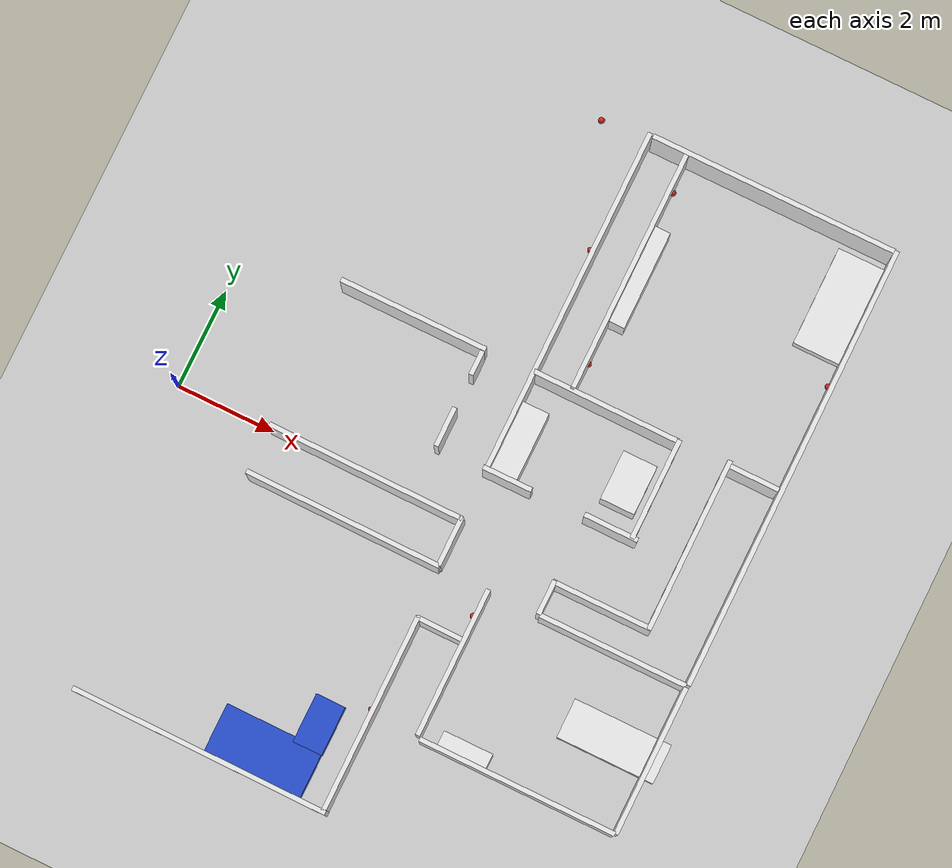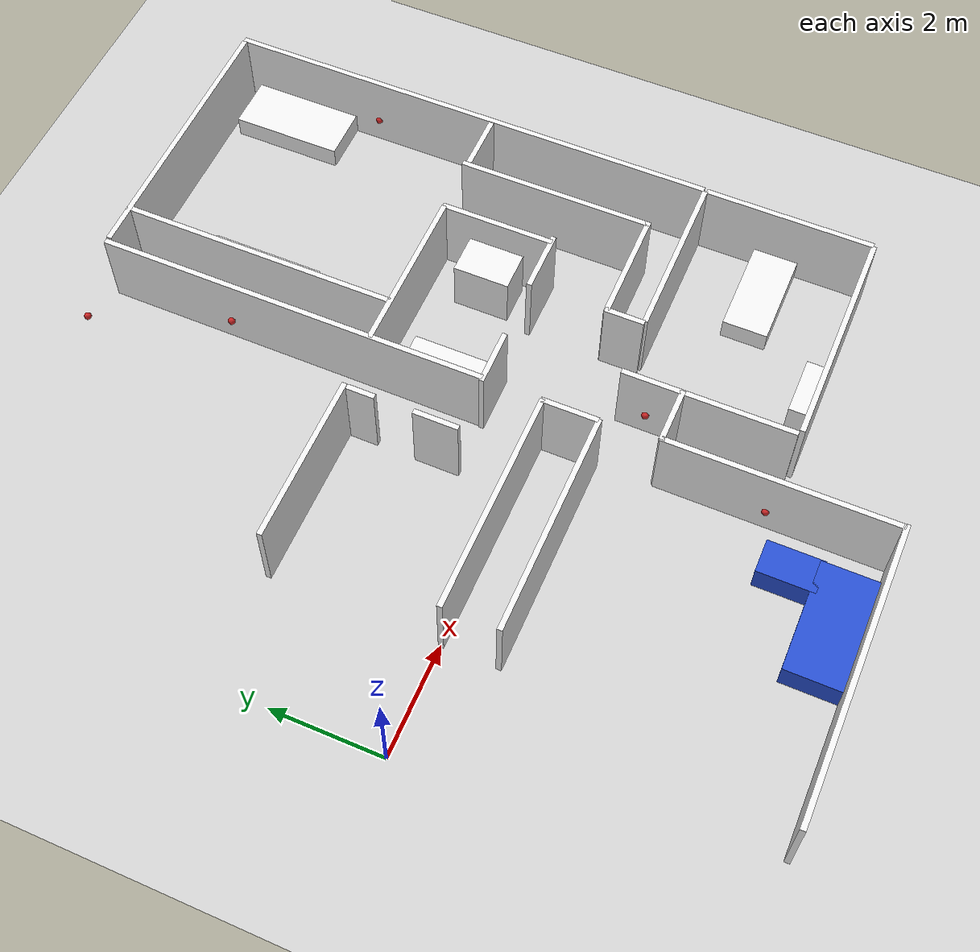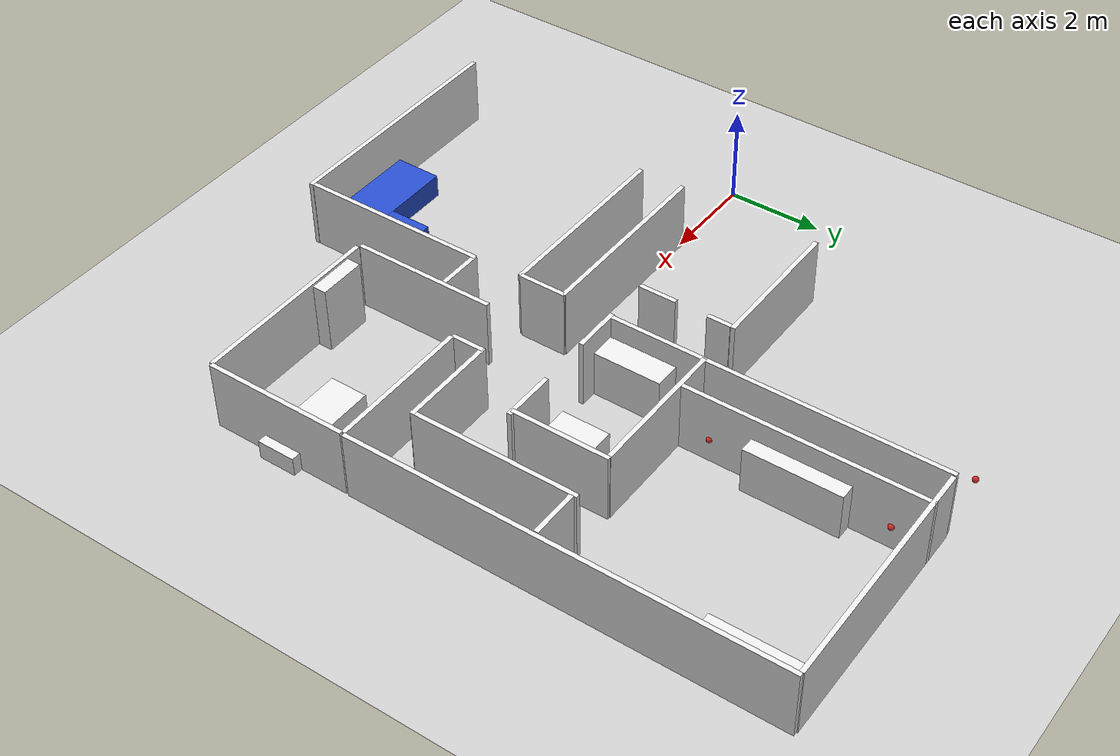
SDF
<sdf version="1.6">
 <world name="default">
  <model name="ground_plane">
   <static>1</static>
   <link name="link">
    <collision name="collision">
     <geometry><plane><normal>0 0 1</normal><size>100 100</size></plane></geometry>
     <surface>
      <contact><collide_bitmask>65535</collide_bitmask></contact>
      <friction><ode><mu>100</mu><mu2>50</mu2></ode></friction>
     </surface>
    </collision>
    <visual name="visual">
     <cast_shadows>0</cast_shadows>
     <geometry><plane><normal>0 0 1</normal><size>100 100</size></plane></geometry>
     <material>
      <script><uri>file://media/materials/scripts/gazebo.material</uri><name>Gazebo/Grey</name></script>
     </material>
    </visual>
   </link>
  </model>
  <model name="unit_box_clone_6">
   <static>1</static>
   <pose>4.95108 2.70454 0.725943 0 -0 0</pose>
   <link name="link">
    <inertial>
     <mass>1</mass>
     <inertia>
      <ixx>0.166667</ixx>
      <ixy>0</ixy>
      <ixz>0</ixz>
      <iyy>0.166667</iyy>
      <iyz>0</iyz>
      <izz>0.166667</izz>
     </inertia>
    </inertial>
    <collision name="collision"><geometry><box><size>0.094944 0.5 1.45871</size></box></geometry></collision>
    <visual name="visual">
     <geometry><box><size>0.094944 0.5 1.45871</size></box></geometry>
     <material>
      <script><name>Gazebo/White</name><uri>file://media/materials/scripts/gazebo.material</uri></script>
     </material>
    </visual>
   </link>
  </model>
  <model name="unit_box_clone_8">
   <static>1</static>
   <pose>6.99481 -2.49921 0.725943 0 -0 0</pose>
   <link name="link">
    <inertial>
     <mass>1</mass>
     <inertia>
      <ixx>0.166667</ixx>
      <ixy>0</ixy>
      <ixz>0</ixz>
      <iyy>0.166667</iyy>
      <iyz>0</iyz>
      <izz>0.166667</izz>
     </inertia>
    </inertial>
    <collision name="collision"><geometry><box><size>0.094944 3 1.45871</size></box></geometry></collision>
    <visual name="visual">
     <geometry><box><size>0.094944 3 1.45871</size></box></geometry>
     <material>
      <script><name>Gazebo/White</name><uri>file://media/materials/scripts/gazebo.material</uri></script>
     </material>
    </visual>
   </link>
  </model>
  <model name="unit_box_clone_11">
   <static>1</static>
   <pose>3.98909 -0.99365 0.725943 0 0 -1.57768</pose>
   <link name="link">
    <inertial>
     <mass>1</mass>
     <inertia>
      <ixx>0.166667</ixx>
      <ixy>0</ixy>
      <ixz>0</ixz>
      <iyy>0.166667</iyy>
      <iyz>0</iyz>
      <izz>0.166667</izz>
     </inertia>
    </inertial>
    <collision name="collision"><geometry><box><size>0.094944 4 1.45871</size></box></geometry></collision>
    <visual name="visual">
     <geometry><box><size>0.094944 4 1.45871</size></box></geometry>
     <material>
      <script><name>Gazebo/White</name><uri>file://media/materials/scripts/gazebo.material</uri></script>
     </material>
    </visual>
   </link>
  </model>
  <model name="unit_box_clone_13">
   <static>1</static>
   <pose>3.98138 -0.020731 0.725943 0 0 -1.577</pose>
   <link name="link">
    <inertial>
     <mass>1</mass>
     <inertia>
      <ixx>0.166667</ixx>
      <ixy>0</ixy>
      <ixz>0</ixz>
      <iyy>0.166667</iyy>
      <iyz>0</iyz>
      <izz>0.166667</izz>
     </inertia>
    </inertial>
    <collision name="collision"><geometry><box><size>0.094944 4 1.45871</size></box></geometry></collision>
    <visual name="visual">
     <geometry><box><size>0.094944 4 1.45871</size></box></geometry>
     <material>
      <script><name>Gazebo/White</name><uri>file://media/materials/scripts/gazebo.material</uri></script>
     </material>
    </visual>
   </link>
  </model>
  <model name="unit_box_clone_14">
   <static>1</static>
   <pose>5.96632 -0.501926 0.725943 0 -0 0</pose>
   <link name="link">
    <inertial>
     <mass>1</mass>
     <inertia>
      <ixx>0.166667</ixx>
      <ixy>0</ixy>
      <ixz>0</ixz>
      <iyy>0.166667</iyy>
      <iyz>0</iyz>
      <izz>0.166667</izz>
     </inertia>
    </inertial>
    <collision name="collision"><geometry><box><size>0.094944 1 1.45871</size></box></geometry></collision>
    <visual name="visual">
     <geometry><box><size>0.094944 1 1.45871</size></box></geometry>
     <material>
      <script><name>Gazebo/White</name><uri>file://media/materials/scripts/gazebo.material</uri></script>
     </material>
    </visual>
   </link>
  </model>
  <model name="unit_box_clone_15">
   <static>1</static>
   <pose>6.0441 -4.01745 0.725943 0 -0 0</pose>
   <link name="link">
    <inertial>
     <mass>1</mass>
     <inertia>
      <ixx>0.166667</ixx>
      <ixy>0</ixy>
      <ixz>0</ixz>
      <iyy>0.166667</iyy>
      <iyz>0</iyz>
      <izz>0.166667</izz>
     </inertia>
    </inertial>
    <collision name="collision"><geometry><box><size>0.094944 4 1.45871</size></box></geometry></collision>
    <visual name="visual">
     <geometry><box><size>0.094944 4 1.45871</size></box></geometry>
     <material>
      <script><name>Gazebo/White</name><uri>file://media/materials/scripts/gazebo.material</uri></script>
     </material>
    </visual>
   </link>
  </model>
  <model name="unit_box_clone_18">
   <static>1</static>
   <pose>6.52354 -2.04368 0.725943 0 0 -1.57949</pose>
   <link name="link">
    <inertial>
     <mass>1</mass>
     <inertia>
      <ixx>0.166667</ixx>
      <ixy>0</ixy>
      <ixz>0</ixz>
      <iyy>0.166667</iyy>
      <iyz>0</iyz>
      <izz>0.166667</izz>
     </inertia>
    </inertial>
    <collision name="collision"><geometry><box><size>0.094944 1 1.45871</size></box></geometry></collision>
    <visual name="visual">
     <geometry><box><size>0.094944 1 1.45871</size></box></geometry>
     <material>
      <script><name>Gazebo/White</name><uri>file://media/materials/scripts/gazebo.material</uri></script>
     </material>
    </visual>
   </link>
  </model>
  <model name="unit_box_clone_19">
   <static>1</static>
   <pose>3.48899 -6.0094 0.725943 0 -0 1.56515</pose>
   <link name="link">
    <inertial>
     <mass>1</mass>
     <inertia>
      <ixx>0.166667</ixx>
      <ixy>0</ixy>
      <ixz>0</ixz>
      <iyy>0.166667</iyy>
      <iyz>0</iyz>
      <izz>0.166667</izz>
     </inertia>
    </inertial>
    <collision name="collision"><geometry><box><size>0.094944 5.21981 1.45871</size></box></geometry></collision>
    <visual name="visual">
     <geometry><box><size>0.094944 5.21981 1.45871</size></box></geometry>
     <material>
      <script><name>Gazebo/White</name><uri>file://media/materials/scripts/gazebo.material</uri></script>
     </material>
    </visual>
   </link>
  </model>
  <model name="unit_box_clone_22">
   <static>1</static>
   <pose>9.55545 -1.00798 0.725943 0 0 -1.57075</pose>
   <link name="link">
    <inertial>
     <mass>1</mass>
     <inertia>
      <ixx>0.166667</ixx>
      <ixy>0</ixy>
      <ixz>0</ixz>
      <iyy>0.166667</iyy>
      <iyz>0</iyz>
      <izz>0.166667</izz>
     </inertia>
    </inertial>
    <collision name="collision"><geometry><box><size>0.094944 3 1.45871</size></box></geometry></collision>
    <visual name="visual">
     <geometry><box><size>0.094944 3 1.45871</size></box></geometry>
     <material>
      <script><name>Gazebo/White</name><uri>file://media/materials/scripts/gazebo.material</uri></script>
     </material>
    </visual>
   </link>
  </model>
  <model name="unit_box_clone_23">
   <static>1</static>
   <pose>9.05828 -4.04024 0.725943 0 0 -1.5714</pose>
   <link name="link">
    <inertial>
     <mass>1</mass>
     <inertia>
      <ixx>0.166667</ixx>
      <ixy>0</ixy>
      <ixz>0</ixz>
      <iyy>0.166667</iyy>
      <iyz>0</iyz>
      <izz>0.166667</izz>
     </inertia>
    </inertial>
    <collision name="collision"><geometry><box><size>0.094944 4 1.45871</size></box></geometry></collision>
    <visual name="visual">
     <geometry><box><size>0.094944 4 1.45871</size></box></geometry>
     <material>
      <script><name>Gazebo/White</name><uri>file://media/materials/scripts/gazebo.material</uri></script>
     </material>
    </visual>
   </link>
  </model>
  <model name="unit_box_clone_24">
   <static>1</static>
   <pose>11.076 -2.5322 0.725943 0 -0 0</pose>
   <link name="link">
    <inertial>
     <mass>1</mass>
     <inertia>
      <ixx>0.166667</ixx>
      <ixy>0</ixy>
      <ixz>0</ixz>
      <iyy>0.166667</iyy>
      <iyz>0</iyz>
      <izz>0.166667</izz>
     </inertia>
    </inertial>
    <collision name="collision"><geometry><box><size>0.094944 3 1.45871</size></box></geometry></collision>
    <visual name="visual">
     <geometry><box><size>0.094944 3 1.45871</size></box></geometry>
     <material>
      <script><name>Gazebo/White</name><uri>file://media/materials/scripts/gazebo.material</uri></script>
     </material>
    </visual>
   </link>
  </model>
  <model name="unit_box_clone_25">
   <static>1</static>
   <pose>3.4934 3.00946 0.725943 0 0 -1.57117</pose>
   <link name="link">
    <inertial>
     <mass>1</mass>
     <inertia>
      <ixx>0.166667</ixx>
      <ixy>0</ixy>
      <ixz>0</ixz>
      <iyy>0.166667</iyy>
      <iyz>0</iyz>
      <izz>0.166667</izz>
     </inertia>
    </inertial>
    <collision name="collision"><geometry><box><size>0.094944 3 1.45871</size></box></geometry></collision>
    <visual name="visual">
     <geometry><box><size>0.094944 3 1.45871</size></box></geometry>
     <material>
      <script><name>Gazebo/White</name><uri>file://media/materials/scripts/gazebo.material</uri></script>
     </material>
    </visual>
   </link>
  </model>
  <model name="unit_box_clone_26">
   <static>1</static>
   <pose>8.02728 -0.661422 0.725943 0 -0 0</pose>
   <link name="link">
    <inertial>
     <mass>1</mass>
     <inertia>
      <ixx>0.166667</ixx>
      <ixy>0</ixy>
      <ixz>0</ixz>
      <iyy>0.166667</iyy>
      <iyz>0</iyz>
      <izz>0.166667</izz>
     </inertia>
    </inertial>
    <collision name="collision"><geometry><box><size>0.094944 0.7 1.45871</size></box></geometry></collision>
    <visual name="visual">
     <geometry><box><size>0.094944 0.7 1.45871</size></box></geometry>
     <material>
      <script><name>Gazebo/White</name><uri>file://media/materials/scripts/gazebo.material</uri></script>
     </material>
    </visual>
   </link>
  </model>
  <model name="unit_box_clone_27">
   <static>1</static>
   <pose>9.01259 -0.34229 0.725943 0 0 -1.56957</pose>
   <link name="link">
    <inertial>
     <mass>1</mass>
     <inertia>
      <ixx>0.166667</ixx>
      <ixy>0</ixy>
      <ixz>0</ixz>
      <iyy>0.166667</iyy>
      <iyz>0</iyz>
      <izz>0.166667</izz>
     </inertia>
    </inertial>
    <collision name="collision"><geometry><box><size>0.094944 2.03907 1.45871</size></box></geometry></collision>
    <visual name="visual">
     <geometry><box><size>0.094944 2.03907 1.45871</size></box></geometry>
     <material>
      <script><name>Gazebo/White</name><uri>file://media/materials/scripts/gazebo.material</uri></script>
     </material>
    </visual>
   </link>
  </model>
  <model name="unit_box_clone_28">
   <static>1</static>
   <pose>5.97955 4.5167 0.725943 0 -0 0</pose>
   <link name="link">
    <inertial>
     <mass>1</mass>
     <inertia>
      <ixx>0.166667</ixx>
      <ixy>0</ixy>
      <ixz>0</ixz>
      <iyy>0.166667</iyy>
      <iyz>0</iyz>
      <izz>0.166667</izz>
     </inertia>
    </inertial>
    <collision name="collision"><geometry><box><size>0.094944 7 1.45871</size></box></geometry></collision>
    <visual name="visual">
     <geometry><box><size>0.094944 7 1.45871</size></box></geometry>
     <material>
      <script><name>Gazebo/White</name><uri>file://media/materials/scripts/gazebo.material</uri></script>
     </material>
    </visual>
   </link>
  </model>
  <model name="unit_box_clone_30">
   <static>1</static>
   <pose>8.55175 7.99005 0.725943 0 0 -1.57056</pose>
   <link name="link">
    <inertial>
     <mass>1</mass>
     <inertia>
      <ixx>0.166667</ixx>
      <ixy>0</ixy>
      <ixz>0</ixz>
      <iyy>0.166667</iyy>
      <iyz>0</iyz>
      <izz>0.166667</izz>
     </inertia>
    </inertial>
    <collision name="collision"><geometry><box><size>0.094944 5 1.45871</size></box></geometry></collision>
    <visual name="visual">
     <geometry><box><size>0.094944 5 1.45871</size></box></geometry>
     <material>
      <script><name>Gazebo/White</name><uri>file://media/materials/scripts/gazebo.material</uri></script>
     </material>
    </visual>
   </link>
  </model>
  <model name="unit_box_clone_31">
   <static>1</static>
   <pose>11.0918 3.51762 0.725943 0 -0 0</pose>
   <link name="link">
    <inertial>
     <mass>1</mass>
     <inertia>
      <ixx>0.166667</ixx>
      <ixy>0</ixy>
      <ixz>0</ixz>
      <iyy>0.166667</iyy>
      <iyz>0</iyz>
      <izz>0.166667</izz>
     </inertia>
    </inertial>
    <collision name="collision"><geometry><box><size>0.094944 9 1.45871</size></box></geometry></collision>
    <visual name="visual">
     <geometry><box><size>0.094944 9 1.45871</size></box></geometry>
     <material>
      <script><name>Gazebo/White</name><uri>file://media/materials/scripts/gazebo.material</uri></script>
     </material>
    </visual>
   </link>
  </model>
  <model name="unit_box_clone_32">
   <static>1</static>
   <pose>8.97416 2.03635 0.725943 0 -0 0</pose>
   <link name="link">
    <inertial>
     <mass>1</mass>
     <inertia>
      <ixx>0.166667</ixx>
      <ixy>0</ixy>
      <ixz>0</ixz>
      <iyy>0.166667</iyy>
      <iyz>0</iyz>
      <izz>0.166667</izz>
     </inertia>
    </inertial>
    <collision name="collision"><geometry><box><size>0.094944 2.03907 1.45871</size></box></geometry></collision>
    <visual name="visual">
     <geometry><box><size>0.094944 2.03907 1.45871</size></box></geometry>
     <material>
      <script><name>Gazebo/White</name><uri>file://media/materials/scripts/gazebo.material</uri></script>
     </material>
    </visual>
   </link>
  </model>
  <model name="unit_box_clone_33">
   <static>1</static>
   <pose>6.40936 1.0123 0.725943 0 0 -1.56746</pose>
   <link name="link">
    <inertial>
     <mass>1</mass>
     <inertia>
      <ixx>0.166667</ixx>
      <ixy>0</ixy>
      <ixz>0</ixz>
      <iyy>0.166667</iyy>
      <iyz>0</iyz>
      <izz>0.166667</izz>
     </inertia>
    </inertial>
    <collision name="collision"><geometry><box><size>0.094944 1 1.45871</size></box></geometry></collision>
    <visual name="visual">
     <geometry><box><size>0.094944 1 1.45871</size></box></geometry>
     <material>
      <script><name>Gazebo/White</name><uri>file://media/materials/scripts/gazebo.material</uri></script>
     </material>
    </visual>
   </link>
  </model>
  <model name="unit_box_clone_34">
   <static>1</static>
   <pose>7.46618 3.02711 0.725943 0 0 -1.57479</pose>
   <link name="link">
    <inertial>
     <mass>1</mass>
     <inertia>
      <ixx>0.166667</ixx>
      <ixy>0</ixy>
      <ixz>0</ixz>
      <iyy>0.166667</iyy>
      <iyz>0</iyz>
      <izz>0.166667</izz>
     </inertia>
    </inertial>
    <collision name="collision"><geometry><box><size>0.094944 3 1.45871</size></box></geometry></collision>
    <visual name="visual">
     <geometry><box><size>0.094944 3 1.45871</size></box></geometry>
     <material>
      <script><name>Gazebo/White</name><uri>file://media/materials/scripts/gazebo.material</uri></script>
     </material>
    </visual>
   </link>
  </model>
  <model name="unit_box_clone_35">
   <static>1</static>
   <pose>6.76693 5.53789 0.725943 0 -0 0</pose>
   <link name="link">
    <inertial>
     <mass>1</mass>
     <inertia>
      <ixx>0.166667</ixx>
      <ixy>0</ixy>
      <ixz>0</ixz>
      <iyy>0.166667</iyy>
      <iyz>0</iyz>
      <izz>0.166667</izz>
     </inertia>
    </inertial>
    <collision name="collision"><geometry><box><size>0.094944 5 1.45871</size></box></geometry></collision>
    <visual name="visual">
     <geometry><box><size>0.094944 5 1.45871</size></box></geometry>
     <material>
      <script><name>Gazebo/White</name><uri>file://media/materials/scripts/gazebo.material</uri></script>
     </material>
    </visual>
   </link>
  </model>
  <model name="unit_box_clone_36">
   <static>1</static>
   <pose>9.98858 1.37226 0.725943 0 -0 0</pose>
   <link name="link">
    <inertial>
     <mass>1</mass>
     <inertia>
      <ixx>0.166667</ixx>
      <ixy>0</ixy>
      <ixz>0</ixz>
      <iyy>0.166667</iyy>
      <iyz>0</iyz>
      <izz>0.166667</izz>
     </inertia>
    </inertial>
    <collision name="collision"><geometry><box><size>0.094944 3.5 1.45871</size></box></geometry></collision>
    <visual name="visual">
     <geometry><box><size>0.094944 3.5 1.45871</size></box></geometry>
     <material>
      <script><name>Gazebo/White</name><uri>file://media/materials/scripts/gazebo.material</uri></script>
     </material>
    </visual>
   </link>
  </model>
  <model name="unit_box_clone_37">
   <static>1</static>
   <pose>10.5328 3.02301 0.725943 0 0 -1.57398</pose>
   <link name="link">
    <inertial>
     <mass>1</mass>
     <inertia>
      <ixx>0.166667</ixx>
      <ixy>0</ixy>
      <ixz>0</ixz>
      <iyy>0.166667</iyy>
      <iyz>0</iyz>
      <izz>0.166667</izz>
     </inertia>
    </inertial>
    <collision name="collision"><geometry><box><size>0.094944 1 1.45871</size></box></geometry></collision>
    <visual name="visual">
     <geometry><box><size>0.094944 1 1.45871</size></box></geometry>
     <material>
      <script><name>Gazebo/White</name><uri>file://media/materials/scripts/gazebo.material</uri></script>
     </material>
    </visual>
   </link>
  </model>
  <model name="couch_2">
   <static>1</static>
   <pose>4.51009 -5.48841 0.25 0 -0 0</pose>
   <link name="link">
    <inertial>
     <mass>1</mass>
     <inertia>
      <ixx>0.166667</ixx>
      <ixy>0</ixy>
      <ixz>0</ixz>
      <iyy>0.166667</iyy>
      <iyz>0</iyz>
      <izz>0.166667</izz>
     </inertia>
    </inertial>
    <collision name="collision"><geometry><box><size>2 1 0.5</size></box></geometry></collision>
    <visual name="visual">
     <geometry><box><size>2 1 0.5</size></box></geometry>
     <material>
      <script><name>Gazebo/Blue</name><uri>file://media/materials/scripts/gazebo.material</uri></script>
     </material>
    </visual>
   </link>
  </model>
  <model name="couch_1">
   <static>1</static>
   <pose>5.22391 -4.59309 0.25 0 -0 0</pose>
   <link name="link">
    <inertial>
     <mass>1</mass>
     <inertia>
      <ixx>0.166667</ixx>
      <ixy>0</ixy>
      <ixz>0</ixz>
      <iyy>0.166667</iyy>
      <iyz>0</iyz>
      <izz>0.166667</izz>
     </inertia>
    </inertial>
    <collision name="collision"><geometry><box><size>0.6 1 0.5</size></box></geometry></collision>
    <visual name="visual">
     <geometry><box><size>0.6 1 0.5</size></box></geometry>
     <material>
      <script><name>Gazebo/Blue</name><uri>file://media/materials/scripts/gazebo.material</uri></script>
     </material>
    </visual>
   </link>
  </model>
  <model name="unit_box_10">
   <static>1</static>
   <pose>10.5962 6.77126 0.2  0 -0 0</pose>
   <link name="link">
    <inertial>
     <mass>1</mass>
     <inertia>
      <ixx>0.166667</ixx>
      <ixy>0</ixy>
      <ixz>0</ixz>
      <iyy>0.166667</iyy>
      <iyz>0</iyz>
      <izz>0.166667</izz>
     </inertia>
    </inertial>
    <collision name="collision"><geometry><box><size>1 2 0.4</size></box></geometry></collision>
    <visual name="visual">
     <geometry><box><size>1 2 0.4</size></box></geometry>
     <material>
      <script><name>Gazebo/White</name><uri>file://media/materials/scripts/gazebo.material</uri></script>
     </material>
    </visual>
   </link>
  </model>
  <model name="unit_box_6_clone">
   <static>1</static>
   <pose>6.954 5.54446 0.5 0 -0 0</pose>
   <link name="link">
    <inertial>
     <mass>1</mass>
     <inertia>
      <ixx>0.166667</ixx>
      <ixy>0</ixy>
      <ixz>0</ixz>
      <iyy>0.166667</iyy>
      <iyz>0</iyz>
      <izz>0.166667</izz>
     </inertia>
    </inertial>
    <collision name="collision"><geometry><box><size>0.35 2 1</size></box></geometry></collision>
    <visual name="visual">
     <geometry><box><size>0.35 2 1</size></box></geometry>
     <material>
      <script><name>Gazebo/White</name><uri>file://media/materials/scripts/gazebo.material</uri></script>
     </material>
    </visual>
   </link>
  </model>
  <model name="unit_sphere_clone_7">
   <static>1</static>
   <pose>6.92947 -1.5168 0.5 0 -0 0</pose>
   <link name="link">
    <inertial>
     <mass>1</mass>
     <inertia><ixx>0.1</ixx><ixy>0</ixy><ixz>0</ixz><iyy>0.1</iyy><iyz>0</iyz><izz>0.1</izz></inertia>
    </inertial>
    <collision name="collision"><geometry><sphere><radius>0.0628967</radius></sphere></geometry></collision>
    <visual name="visual">
     <geometry><sphere><radius>0.0628967</radius></sphere></geometry>
     <material>
      <script><name>Gazebo/Red</name><uri>file://media/materials/scripts/gazebo.material</uri></script>
     </material>
    </visual>
   </link>
  </model>
  <model name="unit_sphere_clone_8">
   <static>1</static>
   <pose>5.98873 -3.91539 0.5 0 -0 0</pose>
   <link name="link">
    <inertial>
     <mass>1</mass>
     <inertia><ixx>0.1</ixx><ixy>0</ixy><ixz>0</ixz><iyy>0.1</iyy><iyz>0</iyz><izz>0.1</izz></inertia>
    </inertial>
    <collision name="collision"><geometry><sphere><radius>0.0628967</radius></sphere></geometry></collision>
    <visual name="visual">
     <geometry><sphere><radius>0.0628967</radius></sphere></geometry>
     <material>
      <script><name>Gazebo/Red</name><uri>file://media/materials/scripts/gazebo.material</uri></script>
     </material>
    </visual>
   </link>
  </model>
  <model name="unit_sphere_clone_11">
   <static>1</static>
   <pose>5.89865 5.67124 0.5 0 -0 0</pose>
   <link name="link">
    <inertial>
     <mass>1</mass>
     <inertia><ixx>0.1</ixx><ixy>0</ixy><ixz>0</ixz><iyy>0.1</iyy><iyz>0</iyz><izz>0.1</izz></inertia>
    </inertial>
    <collision name="collision"><geometry><sphere><radius>0.0628967</radius></sphere></geometry></collision>
    <visual name="visual">
     <geometry><sphere><radius>0.0628967</radius></sphere></geometry>
     <material>
      <script><name>Gazebo/Red</name><uri>file://media/materials/scripts/gazebo.material</uri></script>
     </material>
    </visual>
   </link>
  </model>
  <model name="unit_sphere_clone_12">
   <static>1</static>
   <pose>5.00588 7.99442 0.5 0 -0 0</pose>
   <link name="link">
    <inertial>
     <mass>1</mass>
     <inertia><ixx>0.1</ixx><ixy>0</ixy><ixz>0</ixz><iyy>0.1</iyy><iyz>0</iyz><izz>0.1</izz></inertia>
    </inertial>
    <collision name="collision"><geometry><sphere><radius>0.0628967</radius></sphere></geometry></collision>
    <visual name="visual">
     <geometry><sphere><radius>0.0628967</radius></sphere></geometry>
     <material>
      <script><name>Gazebo/Red</name><uri>file://media/materials/scripts/gazebo.material</uri></script>
     </material>
    </visual>
   </link>
  </model>
  <model name="unit_box_clone_6_clone">
   <static>1</static>
   <pose>4.95082 1.37721 0.725943 0 -0 0</pose>
   <link name="link">
    <inertial>
     <mass>1</mass>
     <inertia>
      <ixx>0.166667</ixx>
      <ixy>0</ixy>
      <ixz>0</ixz>
      <iyy>0.166667</iyy>
      <iyz>0</iyz>
      <izz>0.166667</izz>
     </inertia>
    </inertial>
    <collision name="collision"><geometry><box><size>0.094944 0.8 1.45871</size></box></geometry></collision>
    <visual name="visual">
     <geometry><box><size>0.094944 0.8 1.45871</size></box></geometry>
     <material>
      <script><name>Gazebo/White</name><uri>file://media/materials/scripts/gazebo.material</uri></script>
     </material>
    </visual>
   </link>
  </model>
  <model name="unit_box_clone_6_clone_0">
   <static>1</static>
   <pose>8.5369 1.03367 0.725943 0 0 -1.57438</pose>
   <link name="link">
    <inertial>
     <mass>1</mass>
     <inertia>
      <ixx>0.166667</ixx>
      <ixy>0</ixy>
      <ixz>0</ixz>
      <iyy>0.166667</iyy>
      <iyz>0</iyz>
      <izz>0.166667</izz>
     </inertia>
    </inertial>
    <collision name="collision"><geometry><box><size>0.094944 1.1 1.45871</size></box></geometry></collision>
    <visual name="visual">
     <geometry><box><size>0.094944 1.1 1.45871</size></box></geometry>
     <material>
      <script><name>Gazebo/White</name><uri>file://media/materials/scripts/gazebo.material</uri></script>
     </material>
    </visual>
   </link>
  </model>
  <model name="unit_sphere_clone_13">
   <static>1</static>
   <pose>6.80196 3.70411 0.5 0 -0 0</pose>
   <link name="link">
    <inertial>
     <mass>1</mass>
     <inertia><ixx>0.1</ixx><ixy>0</ixy><ixz>0</ixz><iyy>0.1</iyy><iyz>0</iyz><izz>0.1</izz></inertia>
    </inertial>
    <collision name="collision"><geometry><sphere><radius>0.0628967</radius></sphere></geometry></collision>
    <visual name="visual">
     <geometry><sphere><radius>0.0628967</radius></sphere></geometry>
     <material>
      <script><name>Gazebo/Red</name><uri>file://media/materials/scripts/gazebo.material</uri></script>
     </material>
    </visual>
   </link>
  </model>
  <model name="unit_sphere_clone_14">
   <static>1</static>
   <pose>11.0487 5.28587 0.5 0 -0 0</pose>
   <link name="link">
    <inertial>
     <mass>1</mass>
     <inertia><ixx>0.1</ixx><ixy>0</ixy><ixz>0</ixz><iyy>0.1</iyy><iyz>0</iyz><izz>0.1</izz></inertia>
    </inertial>
    <collision name="collision"><geometry><sphere><radius>0.0628967</radius></sphere></geometry></collision>
    <visual name="visual">
     <geometry><sphere><radius>0.0628967</radius></sphere></geometry>
     <material>
      <script><name>Gazebo/Red</name><uri>file://media/materials/scripts/gazebo.material</uri></script>
     </material>
    </visual>
   </link>
  </model>
  <model name="unit_sphere_clone_15">
   <static>1</static>
   <pose>6.82133 7.33192 0.5 0 -0 0</pose>
   <link name="link">
    <inertial>
     <mass>1</mass>
     <inertia><ixx>0.1</ixx><ixy>0</ixy><ixz>0</ixz><iyy>0.1</iyy><iyz>0</iyz><izz>0.1</izz></inertia>
    </inertial>
    <collision name="collision"><geometry><sphere><radius>0.0628967</radius></sphere></geometry></collision>
    <visual name="visual">
     <geometry><sphere><radius>0.0628967</radius></sphere></geometry>
     <material>
      <script><name>Gazebo/Red</name><uri>file://media/materials/scripts/gazebo.material</uri></script>
     </material>
    </visual>
   </link>
  </model>
  <model name="unit_box_14">
   <static>1</static>
   <pose>8.46419 1.97041 0.5 0 -0 0</pose>
   <link name="link">
    <inertial>
     <mass>1</mass>
     <inertia>
      <ixx>0.166667</ixx>
      <ixy>0</ixy>
      <ixz>0</ixz>
      <iyy>0.166667</iyy>
      <iyz>0</iyz>
      <izz>0.166667</izz>
     </inertia>
    </inertial>
    <collision name="collision"><geometry><box><size>0.7 1 1</size></box></geometry></collision>
    <visual name="visual">
     <geometry><box><size>0.7 1 1</size></box></geometry>
     <material>
      <script><name>Gazebo/White</name><uri>file://media/materials/scripts/gazebo.material</uri></script>
     </material>
    </visual>
   </link>
  </model>
  <model name="unit_box_15">
   <static>1</static>
   <pose>6.26667 1.73243 0.5 0 -0 0</pose>
   <link name="link">
    <inertial>
     <mass>1</mass>
     <inertia>
      <ixx>0.166667</ixx>
      <ixy>0</ixy>
      <ixz>0</ixz>
      <iyy>0.166667</iyy>
      <iyz>0</iyz>
      <izz>0.166667</izz>
     </inertia>
    </inertial>
    <collision name="collision"><geometry><box><size>0.6 1.5 1</size></box></geometry></collision>
    <visual name="visual">
     <geometry><box><size>0.6 1.5 1</size></box></geometry>
     <material>
      <script><name>Gazebo/White</name><uri>file://media/materials/scripts/gazebo.material</uri></script>
     </material>
    </visual>
   </link>
  </model>
  <model name="unit_box_16">
   <static>1</static>
   <pose>10.315 -2.46325 0.2 0 -0 0</pose>
   <link name="link">
    <inertial>
     <mass>1</mass>
     <inertia>
      <ixx>0.166667</ixx>
      <ixy>0</ixy>
      <ixz>0</ixz>
      <iyy>0.166667</iyy>
      <iyz>0</iyz>
      <izz>0.166667</izz>
     </inertia>
    </inertial>
    <collision name="collision"><geometry><box><size>2 0.8 0.4</size></box></geometry></collision>
    <visual name="visual">
     <geometry><box><size>2 0.8 0.4</size></box></geometry>
     <material>
      <script><name>Gazebo/White</name><uri>file://media/materials/scripts/gazebo.material</uri></script>
     </material>
    </visual>
   </link>
  </model>
  <model name="unit_box_17">
   <static>1</static>
   <pose>7.9 -3.85 0.5 0 -0 0</pose>
   <link name="link">
    <inertial>
     <mass>1</mass>
     <inertia>
      <ixx>0.166667</ixx>
      <ixy>0</ixy>
      <ixz>0</ixz>
      <iyy>0.166667</iyy>
      <iyz>0</iyz>
      <izz>0.166667</izz>
     </inertia>
    </inertial>
    <collision name="collision"><geometry><box><size>1 0.3 1.8</size></box></geometry></collision>
    <visual name="visual">
     <geometry><box><size>1 0.3 1.8</size></box></geometry>
     <material>
      <script><name>Gazebo/White</name><uri>file://media/materials/scripts/gazebo.material</uri></script>
     </material>
    </visual>
   </link>
  </model>
 </world>
</sdf>
